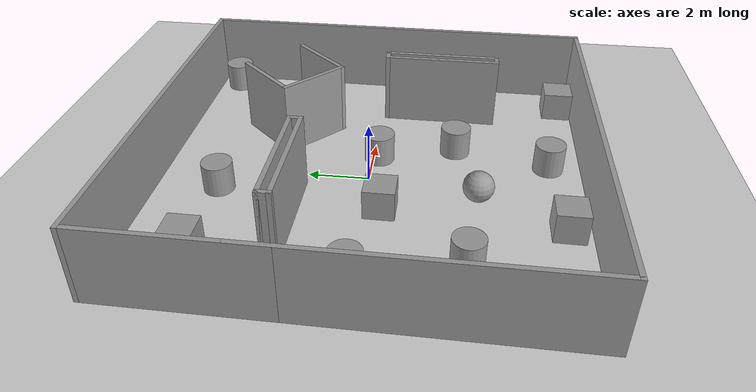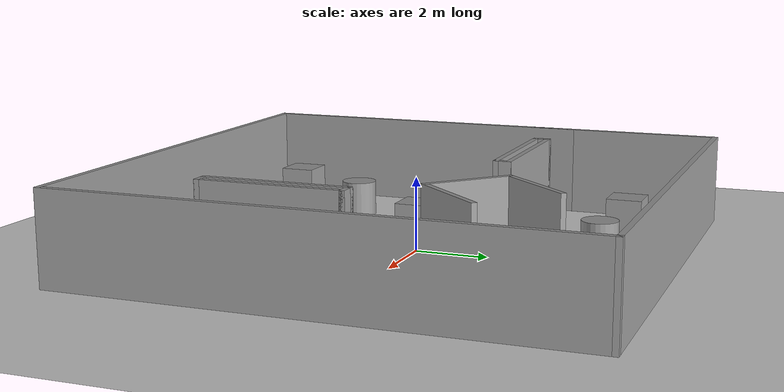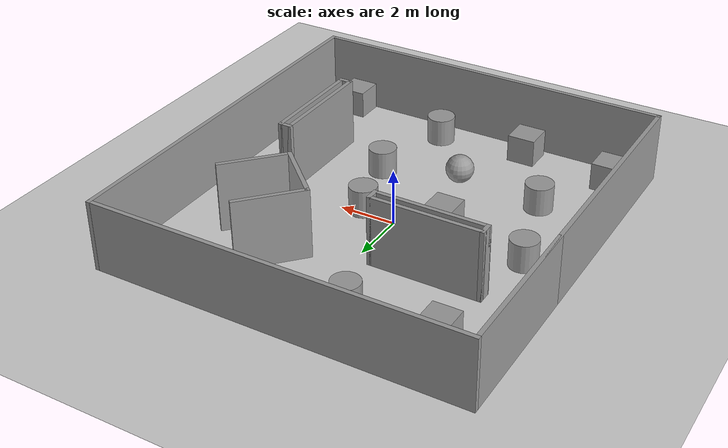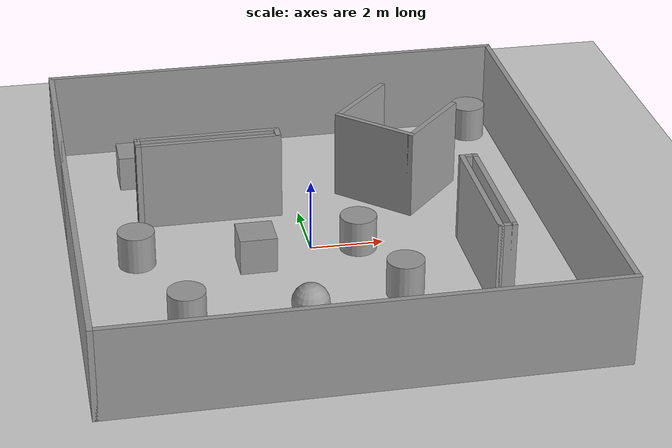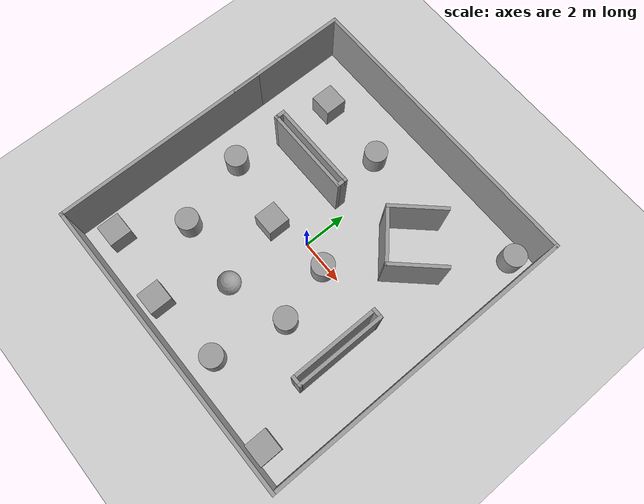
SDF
<sdf version="1.7">
 <world name="default">
  <light name="sun" type="directional">
   <pose>0 0 10 0 -0 0</pose>
   <diffuse>0.8 0.8 0.8 1</diffuse>
   <specular>0.2 0.2 0.2 1</specular>
   <attenuation>
    <range>1000</range>
    <constant>0.9</constant>
    <linear>0.01</linear>
    <quadratic>0.001</quadratic>
   </attenuation>
   <direction>-0.5 0.1 -0.9</direction>
   <spot><inner_angle>0</inner_angle><outer_angle>0</outer_angle><falloff>0</falloff></spot>
  </light>
  <model name="ground_plane">
   <static>1</static>
   <link name="link">
    <collision name="collision">
     <geometry><plane><normal>0 0 1</normal><size>100 100</size></plane></geometry>
     <surface>
      <contact><collide_bitmask>65535</collide_bitmask></contact>
      <friction><ode><mu>100</mu><mu2>50</mu2></ode></friction>
     </surface>
    </collision>
    <visual name="visual">
     <cast_shadows>0</cast_shadows>
     <geometry><plane><normal>0 0 1</normal><size>100 100</size></plane></geometry>
     <material>
      <script><uri>file://media/materials/scripts/gazebo.material</uri><name>Gazebo/Grey</name></script>
     </material>
    </visual>
   </link>
  </model>
  <gravity>0 0 -9.8</gravity>
  <magnetic_field>6e-06 2.3e-05 -4.2e-05</magnetic_field>
  <atmosphere type="adiabatic"/>
  <physics type="ode">
   <max_step_size>0.001</max_step_size>
   <real_time_factor>1</real_time_factor>
   <real_time_update_rate>1000</real_time_update_rate>
  </physics>
  <scene><ambient>0.4 0.4 0.4 1</ambient><background>0.7 0.7 0.7 1</background><shadows>1</shadows></scene>
  <spherical_coordinates>
   <surface_model>EARTH_WGS84</surface_model>
   <latitude_deg>0</latitude_deg>
   <longitude_deg>0</longitude_deg>
   <elevation>0</elevation>
   <heading_deg>0</heading_deg>
  </spherical_coordinates>
  <model name="multi14x14">
   <pose>0.130859 -0.079498 0 0 -0 0</pose>
   <link name="Wall_10">
    <collision name="Wall_10_Collision">
     <geometry><box><size>13.25 0.15 2.5</size></box></geometry>
     <pose>0 0 1.25 0 -0 0</pose>
    </collision>
    <visual name="Wall_10_Visual">
     <pose>0 0 1.25 0 -0 0</pose>
     <geometry><box><size>13.25 0.15 2.5</size></box></geometry>
     <material>
      <script><uri>file://media/materials/scripts/gazebo.material</uri><name>Gazebo/Grey</name></script>
      <ambient>1 1 1 1</ambient>
     </material>
     <meta><layer>0</layer></meta>
    </visual>
    <pose>-0 -6.925 0 0 -0 0</pose>
   </link>
   <link name="Wall_11">
    <collision name="Wall_11_Collision">
     <geometry><box><size>14 0.15 2.5</size></box></geometry>
     <pose>0 0 1.25 0 -0 0</pose>
    </collision>
    <visual name="Wall_11_Visual">
     <pose>0 0 1.25 0 -0 0</pose>
     <geometry><box><size>14 0.15 2.5</size></box></geometry>
     <material>
      <script><uri>file://media/materials/scripts/gazebo.material</uri><name>Gazebo/Grey</name></script>
      <ambient>1 1 1 1</ambient>
     </material>
     <meta><layer>0</layer></meta>
    </visual>
    <pose>6.55 0 0 0 -0 1.5708</pose>
   </link>
   <link name="Wall_12">
    <collision name="Wall_12_Collision">
     <geometry><box><size>13.25 0.15 2.5</size></box></geometry>
     <pose>0 0 1.25 0 -0 0</pose>
    </collision>
    <visual name="Wall_12_Visual">
     <pose>0 0 1.25 0 -0 0</pose>
     <geometry><box><size>13.25 0.15 2.5</size></box></geometry>
     <material>
      <script><uri>file://media/materials/scripts/gazebo.material</uri><name>Gazebo/Grey</name></script>
      <ambient>1 1 1 1</ambient>
     </material>
     <meta><layer>0</layer></meta>
    </visual>
    <pose>-0 6.925 0 0 -0 3.14159</pose>
   </link>
   <link name="Wall_13">
    <collision name="Wall_13_Collision">
     <geometry><box><size>5.5 0.15 2.5</size></box></geometry>
     <pose>0 0 1.25 0 -0 0</pose>
    </collision>
    <visual name="Wall_13_Visual">
     <pose>0 0 1.25 0 -0 0</pose>
     <geometry><box><size>5.5 0.15 2.5</size></box></geometry>
     <material>
      <script><uri>file://media/materials/scripts/gazebo.material</uri><name>Gazebo/Grey</name></script>
      <ambient>1 1 1 1</ambient>
     </material>
     <meta><layer>0</layer></meta>
    </visual>
    <pose>-6.55 4.25 0 0 -0 -1.5708</pose>
   </link>
   <link name="Wall_9">
    <collision name="Wall_9_Collision">
     <geometry><box><size>9.75 0.15 2.5</size></box></geometry>
     <pose>0 0 1.25 0 -0 0</pose>
    </collision>
    <visual name="Wall_9_Visual">
     <pose>0 0 1.25 0 -0 0</pose>
     <geometry><box><size>9.75 0.15 2.5</size></box></geometry>
     <material>
      <script><uri>file://media/materials/scripts/gazebo.material</uri><name>Gazebo/Grey</name></script>
      <ambient>1 1 1 1</ambient>
     </material>
     <meta><layer>0</layer></meta>
    </visual>
    <pose>-6.55 -2.125 0 0 -0 -1.5708</pose>
   </link>
   <static>1</static>
  </model>
  <model name="U2.5">
   <pose>3.00472 3.03504 -0 0 0 -0.746831</pose>
   <link name="Wall_14">
    <collision name="Wall_14_Collision">
     <geometry><box><size>2.5 0.15 2.5</size></box></geometry>
     <pose>0 0 1.25 0 -0 0</pose>
    </collision>
    <visual name="Wall_14_Visual">
     <pose>0 0 1.25 0 -0 0</pose>
     <geometry><box><size>2.5 0.15 2.5</size></box></geometry>
     <material>
      <script><uri>file://media/materials/scripts/gazebo.material</uri><name>Gazebo/Grey</name></script>
      <ambient>1 1 1 1</ambient>
     </material>
     <meta><layer>0</layer></meta>
    </visual>
    <pose>-1.175 -0 0 0 -0 -1.5708</pose>
   </link>
   <link name="Wall_15">
    <collision name="Wall_15_Collision">
     <geometry><box><size>2.5 0.15 2.5</size></box></geometry>
     <pose>0 0 1.25 0 -0 0</pose>
    </collision>
    <visual name="Wall_15_Visual">
     <pose>0 0 1.25 0 -0 0</pose>
     <geometry><box><size>2.5 0.15 2.5</size></box></geometry>
     <material>
      <script><uri>file://media/materials/scripts/gazebo.material</uri><name>Gazebo/Grey</name></script>
      <ambient>1 1 1 1</ambient>
     </material>
     <meta><layer>0</layer></meta>
    </visual>
    <pose>-0 -1.175 0 0 -0 0</pose>
   </link>
   <link name="Wall_16">
    <collision name="Wall_16_Collision">
     <geometry><box><size>2.5 0.15 2.5</size></box></geometry>
     <pose>0 0 1.25 0 -0 0</pose>
    </collision>
    <visual name="Wall_16_Visual">
     <pose>0 0 1.25 0 -0 0</pose>
     <geometry><box><size>2.5 0.15 2.5</size></box></geometry>
     <material>
      <script><uri>file://media/materials/scripts/gazebo.material</uri><name>Gazebo/Grey</name></script>
      <ambient>1 1 1 1</ambient>
     </material>
     <meta><layer>0</layer></meta>
    </visual>
    <pose>1.175 -0 0 0 -0 1.5708</pose>
   </link>
   <static>1</static>
  </model>
  <model name="unit_cylinder">
   <pose>5.91502 6.01169 0.499997 4e-06 3e-06 -0</pose>
   <link name="link">
    <inertial>
     <mass>1</mass>
     <inertia><ixx>0.145833</ixx><ixy>0</ixy><ixz>0</ixz><iyy>0.145833</iyy><iyz>0</iyz><izz>0.125</izz></inertia>
    </inertial>
    <collision name="collision">
     <geometry><cylinder><radius>0.5</radius><length>1</length></cylinder></geometry>
    </collision>
    <visual name="visual">
     <geometry><cylinder><radius>0.5</radius><length>1</length></cylinder></geometry>
     <material>
      <script><name>Gazebo/Grey</name><uri>file://media/materials/scripts/gazebo.material</uri></script>
     </material>
    </visual>
   </link>
  </model>
  <model name="I_model">
   <pose>-1.77738 2.73277 0 0 -0 0</pose>
   <link name="Wall_0">
    <collision name="Wall_0_Collision">
     <geometry><box><size>0.5 0.15 2.5</size></box></geometry>
     <pose>0 0 1.25 0 -0 0</pose>
    </collision>
    <visual name="Wall_0_Visual">
     <pose>0 0 1.25 0 -0 0</pose>
     <geometry><box><size>0.5 0.15 2.5</size></box></geometry>
     <material>
      <script><uri>file://media/materials/scripts/gazebo.material</uri><name>Gazebo/Grey</name></script>
      <ambient>1 1 1 1</ambient>
     </material>
     <meta><layer>0</layer></meta>
    </visual>
    <pose>-2.6025 -0.5225 0 0 -0 1.5708</pose>
   </link>
   <link name="Wall_1">
    <collision name="Wall_1_Collision">
     <geometry><box><size>4 0.15 2.5</size></box></geometry>
     <pose>0 0 1.25 0 -0 0</pose>
    </collision>
    <visual name="Wall_1_Visual">
     <pose>0 0 1.25 0 -0 0</pose>
     <geometry><box><size>4 0.15 2.5</size></box></geometry>
     <material>
      <script><uri>file://media/materials/scripts/gazebo.material</uri><name>Gazebo/Grey</name></script>
      <ambient>1 1 1 1</ambient>
     </material>
     <meta><layer>0</layer></meta>
    </visual>
    <pose>-0.6775 -0.3475 0 0 -0 0</pose>
   </link>
   <link name="Wall_2">
    <collision name="Wall_2_Collision">
     <geometry><box><size>0.5 0.15 2.5</size></box></geometry>
     <pose>0 0 1.25 0 -0 0</pose>
    </collision>
    <visual name="Wall_2_Visual">
     <pose>0 0 1.25 0 -0 0</pose>
     <geometry><box><size>0.5 0.15 2.5</size></box></geometry>
     <material>
      <script><uri>file://media/materials/scripts/gazebo.material</uri><name>Gazebo/Grey</name></script>
      <ambient>1 1 1 1</ambient>
     </material>
     <meta><layer>0</layer></meta>
    </visual>
    <pose>1.2475 -0.5225 0 0 -0 -1.5708</pose>
   </link>
   <link name="Wall_3">
    <collision name="Wall_3_Collision">
     <geometry><box><size>4 0.15 2.5</size></box></geometry>
     <pose>0 0 1.25 0 -0 0</pose>
    </collision>
    <visual name="Wall_3_Visual">
     <pose>0 0 1.25 0 -0 0</pose>
     <geometry><box><size>4 0.15 2.5</size></box></geometry>
     <material>
      <script><uri>file://media/materials/scripts/gazebo.material</uri><name>Gazebo/Grey</name></script>
      <ambient>1 1 1 1</ambient>
     </material>
     <meta><layer>0</layer></meta>
    </visual>
    <pose>-0.6775 -0.6975 0 0 -0 3.14159</pose>
   </link>
   <static>1</static>
  </model>
  <model name="unit_box">
   <pose>-4.26375 4.77694 0.499995 0 1e-05 0</pose>
   <link name="link">
    <inertial>
     <mass>1</mass>
     <inertia>
      <ixx>0.166667</ixx>
      <ixy>0</ixy>
      <ixz>0</ixz>
      <iyy>0.166667</iyy>
      <iyz>0</iyz>
      <izz>0.166667</izz>
     </inertia>
    </inertial>
    <collision name="collision"><geometry><box><size>1 1 1</size></box></geometry></collision>
    <visual name="visual">
     <geometry><box><size>1 1 1</size></box></geometry>
     <material>
      <script><name>Gazebo/Grey</name><uri>file://media/materials/scripts/gazebo.material</uri></script>
     </material>
    </visual>
   </link>
  </model>
  <model name="unit_cylinder_0">
   <pose>-1.08588 4.71573 0.499998 3e-06 -2e-06 0</pose>
   <link name="link">
    <inertial>
     <mass>1</mass>
     <inertia><ixx>0.145833</ixx><ixy>0</ixy><ixz>0</ixz><iyy>0.145833</iyy><iyz>0</iyz><izz>0.125</izz></inertia>
    </inertial>
    <collision name="collision">
     <geometry><cylinder><radius>0.5</radius><length>1</length></cylinder></geometry>
    </collision>
    <visual name="visual">
     <geometry><cylinder><radius>0.5</radius><length>1</length></cylinder></geometry>
     <material>
      <script><name>Gazebo/Grey</name><uri>file://media/materials/scripts/gazebo.material</uri></script>
     </material>
    </visual>
   </link>
  </model>
  <model name="unit_cylinder_1">
   <pose>-4.7168 0.010196 0.499992 -3e-06 2e-06 0</pose>
   <link name="link">
    <inertial>
     <mass>1</mass>
     <inertia><ixx>0.145833</ixx><ixy>0</ixy><ixz>0</ixz><iyy>0.145833</iyy><iyz>0</iyz><izz>0.125</izz></inertia>
    </inertial>
    <collision name="collision">
     <geometry><cylinder><radius>0.5</radius><length>1</length></cylinder></geometry>
    </collision>
    <visual name="visual">
     <geometry><cylinder><radius>0.5</radius><length>1</length></cylinder></geometry>
     <material>
      <script><name>Gazebo/Grey</name><uri>file://media/materials/scripts/gazebo.material</uri></script>
     </material>
    </visual>
   </link>
  </model>
  <model name="unit_box_0">
   <pose>-1.58457 -0.553529 0.499995 -1e-05 -0 -0</pose>
   <link name="link">
    <inertial>
     <mass>1</mass>
     <inertia>
      <ixx>0.166667</ixx>
      <ixy>0</ixy>
      <ixz>0</ixz>
      <iyy>0.166667</iyy>
      <iyz>0</iyz>
      <izz>0.166667</izz>
     </inertia>
    </inertial>
    <collision name="collision"><geometry><box><size>1 1 1</size></box></geometry></collision>
    <visual name="visual">
     <geometry><box><size>1 1 1</size></box></geometry>
     <material>
      <script><name>Gazebo/Grey</name><uri>file://media/materials/scripts/gazebo.material</uri></script>
     </material>
    </visual>
   </link>
  </model>
  <model name="unit_cylinder_2">
   <pose>-3.77427 -3.25831 0.499992 -3e-06 2e-06 0</pose>
   <link name="link">
    <inertial>
     <mass>1</mass>
     <inertia><ixx>0.145833</ixx><ixy>0</ixy><ixz>0</ixz><iyy>0.145833</iyy><iyz>0</iyz><izz>0.125</izz></inertia>
    </inertial>
    <collision name="collision">
     <geometry><cylinder><radius>0.5</radius><length>1</length></cylinder></geometry>
    </collision>
    <visual name="visual">
     <geometry><cylinder><radius>0.5</radius><length>1</length></cylinder></geometry>
     <material>
      <script><name>Gazebo/Grey</name><uri>file://media/materials/scripts/gazebo.material</uri></script>
     </material>
    </visual>
   </link>
  </model>
  <model name="unit_box_1">
   <pose>-5.28791 -5.82353 0.499995 -1e-05 -0 -0</pose>
   <link name="link">
    <inertial>
     <mass>1</mass>
     <inertia>
      <ixx>0.166667</ixx>
      <ixy>0</ixy>
      <ixz>0</ixz>
      <iyy>0.166667</iyy>
      <iyz>0</iyz>
      <izz>0.166667</izz>
     </inertia>
    </inertial>
    <collision name="collision"><geometry><box><size>1 1 1</size></box></geometry></collision>
    <visual name="visual">
     <geometry><box><size>1 1 1</size></box></geometry>
     <material>
      <script><name>Gazebo/Grey</name><uri>file://media/materials/scripts/gazebo.material</uri></script>
     </material>
    </visual>
   </link>
  </model>
  <model name="unit_cylinder_3">
   <pose>1.26897 -0.197383 0.499993 -3e-06 2e-06 0</pose>
   <link name="link">
    <inertial>
     <mass>1</mass>
     <inertia><ixx>0.145833</ixx><ixy>0</ixy><ixz>0</ixz><iyy>0.145833</iyy><iyz>0</iyz><izz>0.125</izz></inertia>
    </inertial>
    <collision name="collision">
     <geometry><cylinder><radius>0.5</radius><length>1</length></cylinder></geometry>
    </collision>
    <visual name="visual">
     <geometry><cylinder><radius>0.5</radius><length>1</length></cylinder></geometry>
     <material>
      <script><name>Gazebo/Grey</name><uri>file://media/materials/scripts/gazebo.material</uri></script>
     </material>
    </visual>
   </link>
  </model>
  <model name="unit_sphere">
   <pose>-0.649723 -3.53913 0.5 0 -0 0</pose>
   <link name="link">
    <inertial>
     <mass>1</mass>
     <inertia><ixx>0.1</ixx><ixy>0</ixy><ixz>0</ixz><iyy>0.1</iyy><iyz>0</iyz><izz>0.1</izz></inertia>
    </inertial>
    <collision name="collision"><geometry><sphere><radius>0.5</radius></sphere></geometry></collision>
    <visual name="visual">
     <geometry><sphere><radius>0.5</radius></sphere></geometry>
     <material>
      <script><name>Gazebo/Grey</name><uri>file://media/materials/scripts/gazebo.material</uri></script>
     </material>
    </visual>
   </link>
  </model>
  <model name="unit_cylinder_4">
   <pose>1.99644 -2.73177 0.499993 -3e-06 2e-06 0</pose>
   <link name="link">
    <inertial>
     <mass>1</mass>
     <inertia><ixx>0.145833</ixx><ixy>0</ixy><ixz>0</ixz><iyy>0.145833</iyy><iyz>0</iyz><izz>0.125</izz></inertia>
    </inertial>
    <collision name="collision">
     <geometry><cylinder><radius>0.5</radius><length>1</length></cylinder></geometry>
    </collision>
    <visual name="visual">
     <geometry><cylinder><radius>0.5</radius><length>1</length></cylinder></geometry>
     <material>
      <script><name>Gazebo/Grey</name><uri>file://media/materials/scripts/gazebo.material</uri></script>
     </material>
    </visual>
   </link>
  </model>
  <model name="I_model_0">
   <pose>4.80058 -2.75416 0 0 0 -1.57054</pose>
   <link name="Wall_0">
    <collision name="Wall_0_Collision">
     <geometry><box><size>0.5 0.15 2.5</size></box></geometry>
     <pose>0 0 1.25 0 -0 0</pose>
    </collision>
    <visual name="Wall_0_Visual">
     <pose>0 0 1.25 0 -0 0</pose>
     <geometry><box><size>0.5 0.15 2.5</size></box></geometry>
     <material>
      <script><uri>file://media/materials/scripts/gazebo.material</uri><name>Gazebo/Grey</name></script>
      <ambient>1 1 1 1</ambient>
     </material>
     <meta><layer>0</layer></meta>
    </visual>
    <pose>-2.6025 -0.5225 0 0 -0 1.5708</pose>
   </link>
   <link name="Wall_1">
    <collision name="Wall_1_Collision">
     <geometry><box><size>4 0.15 2.5</size></box></geometry>
     <pose>0 0 1.25 0 -0 0</pose>
    </collision>
    <visual name="Wall_1_Visual">
     <pose>0 0 1.25 0 -0 0</pose>
     <geometry><box><size>4 0.15 2.5</size></box></geometry>
     <material>
      <script><uri>file://media/materials/scripts/gazebo.material</uri><name>Gazebo/Grey</name></script>
      <ambient>1 1 1 1</ambient>
     </material>
     <meta><layer>0</layer></meta>
    </visual>
    <pose>-0.6775 -0.3475 0 0 -0 0</pose>
   </link>
   <link name="Wall_2">
    <collision name="Wall_2_Collision">
     <geometry><box><size>0.5 0.15 2.5</size></box></geometry>
     <pose>0 0 1.25 0 -0 0</pose>
    </collision>
    <visual name="Wall_2_Visual">
     <pose>0 0 1.25 0 -0 0</pose>
     <geometry><box><size>0.5 0.15 2.5</size></box></geometry>
     <material>
      <script><uri>file://media/materials/scripts/gazebo.material</uri><name>Gazebo/Grey</name></script>
      <ambient>1 1 1 1</ambient>
     </material>
     <meta><layer>0</layer></meta>
    </visual>
    <pose>1.2475 -0.5225 0 0 -0 -1.5708</pose>
   </link>
   <link name="Wall_3">
    <collision name="Wall_3_Collision">
     <geometry><box><size>4 0.15 2.5</size></box></geometry>
     <pose>0 0 1.25 0 -0 0</pose>
    </collision>
    <visual name="Wall_3_Visual">
     <pose>0 0 1.25 0 -0 0</pose>
     <geometry><box><size>4 0.15 2.5</size></box></geometry>
     <material>
      <script><uri>file://media/materials/scripts/gazebo.material</uri><name>Gazebo/Grey</name></script>
      <ambient>1 1 1 1</ambient>
     </material>
     <meta><layer>0</layer></meta>
    </visual>
    <pose>-0.6775 -0.6975 0 0 -0 3.14159</pose>
   </link>
   <static>1</static>
  </model>
  <model name="unit_box_2">
   <pose>-1.96348 -6.20068 0.499995 0 1e-05 0</pose>
   <link name="link">
    <inertial>
     <mass>1</mass>
     <inertia>
      <ixx>0.166667</ixx>
      <ixy>0</ixy>
      <ixz>0</ixz>
      <iyy>0.166667</iyy>
      <iyz>0</iyz>
      <izz>0.166667</izz>
     </inertia>
    </inertial>
    <collision name="collision"><geometry><box><size>1 1 1</size></box></geometry></collision>
    <visual name="visual">
     <geometry><box><size>1 1 1</size></box></geometry>
     <material>
      <script><name>Gazebo/Grey</name><uri>file://media/materials/scripts/gazebo.material</uri></script>
     </material>
    </visual>
   </link>
  </model>
  <model name="unit_cylinder_5">
   <pose>1.31533 -5.85291 0.499993 -3e-06 -4e-06 -0</pose>
   <link name="link">
    <inertial>
     <mass>1</mass>
     <inertia><ixx>0.145833</ixx><ixy>0</ixy><ixz>0</ixz><iyy>0.145833</iyy><iyz>0</iyz><izz>0.125</izz></inertia>
    </inertial>
    <collision name="collision">
     <geometry><cylinder><radius>0.5</radius><length>1</length></cylinder></geometry>
    </collision>
    <visual name="visual">
     <geometry><cylinder><radius>0.5</radius><length>1</length></cylinder></geometry>
     <material>
      <script><name>Gazebo/Grey</name><uri>file://media/materials/scripts/gazebo.material</uri></script>
     </material>
    </visual>
   </link>
  </model>
  <model name="unit_box_3">
   <pose>5.22529 -6.40556 0.5 0 -0 0</pose>
   <link name="link">
    <inertial>
     <mass>1</mass>
     <inertia>
      <ixx>0.166667</ixx>
      <ixy>0</ixy>
      <ixz>0</ixz>
      <iyy>0.166667</iyy>
      <iyz>0</iyz>
      <izz>0.166667</izz>
     </inertia>
    </inertial>
    <collision name="collision"><geometry><box><size>1 1 1</size></box></geometry></collision>
    <visual name="visual">
     <geometry><box><size>1 1 1</size></box></geometry>
     <material>
      <script><name>Gazebo/Grey</name><uri>file://media/materials/scripts/gazebo.material</uri></script>
     </material>
    </visual>
   </link>
  </model>
 </world>
</sdf>
